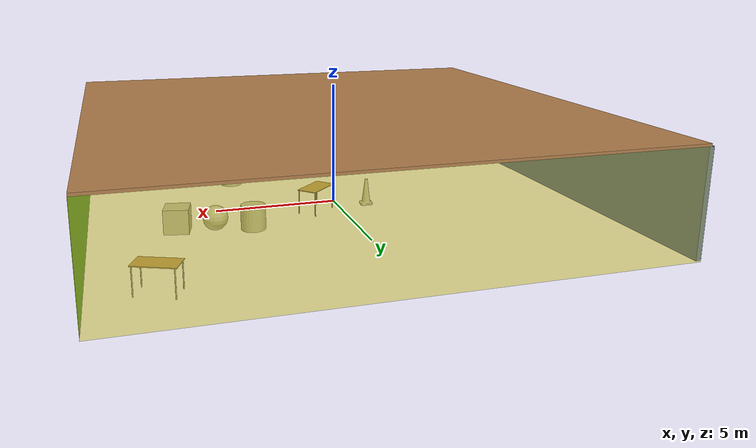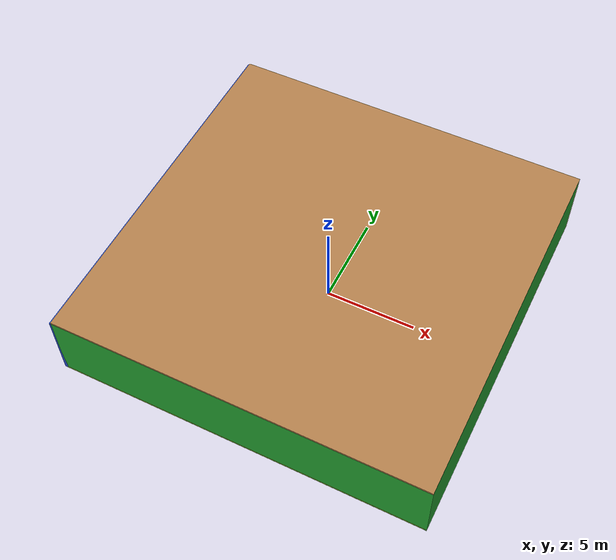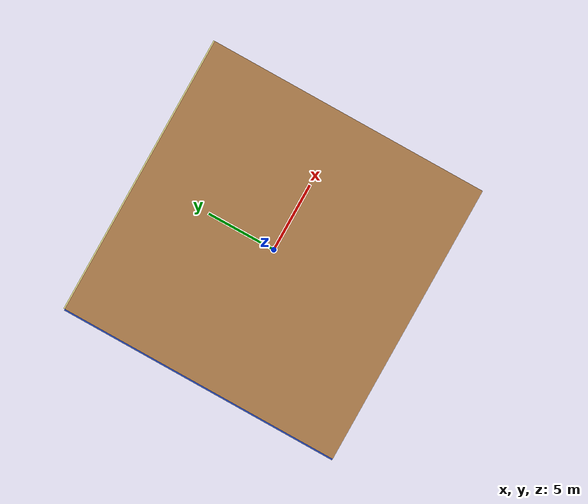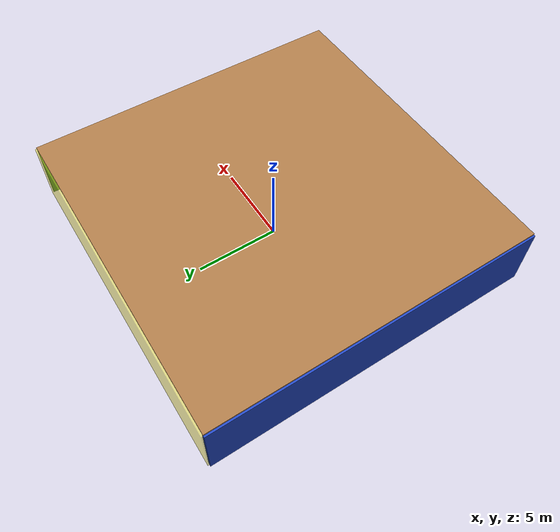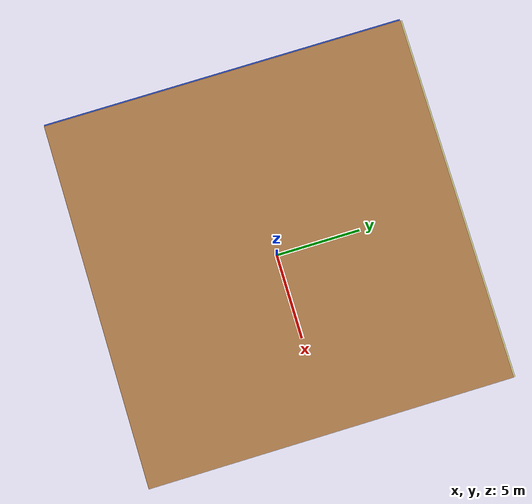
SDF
<sdf version="1.4">
 <world name="default">
  <physics type="ode">
   <max_step_size>0.001</max_step_size>
   <real_time_factor>1</real_time_factor>
   <real_time_update_rate>1000</real_time_update_rate>
   <gravity>0 0 -9.8</gravity>
  </physics>
  <scene><ambient>0.4 0.4 0.4 1</ambient><background>0.7 0.7 0.7 1</background><shadows>1</shadows></scene>
  <model name="Surrounding">
   <static>1</static>
   <link name="Ceiling">
    <collision name="Ceiling_Collision"><geometry><box><size>20 20 0.1</size></box></geometry></collision>
    <visual name="Ceiling_Visual">
     <geometry><box><size>20 20 0.1</size></box></geometry>
     <material>
      <script><uri>file://media/materials/scripts/gazebo.material</uri><name>Gazebo/Wood</name></script>
     </material>
    </visual>
    <pose>0 0 4.05 0 0 0</pose>
   </link>
   <link name="Wall_South">
    <collision name="Wall_South_Collision">
     <geometry><box><size>20 0 4</size></box></geometry>
     <pose>0 0 2 0 -0 0</pose>
    </collision>
    <visual name="Wall_South_Visual">
     <pose>0 0 2 0 -0 0</pose>
     <geometry><box><size>20 0 4</size></box></geometry>
     <material>
      <script><uri>file://media/materials/scripts/gazebo.material</uri><name>Gazebo/GreenGlow</name></script>
     </material>
    </visual>
    <velocity_decay><linear>0</linear><angular>0</angular></velocity_decay>
    <pose>0 -10 0 0 -0 0</pose>
   </link>
   <link name="Wall_East">
    <collision name="Wall_21_Collision">
     <geometry><box><size>20 0 4</size></box></geometry>
     <pose>0 0 2 0 -0 0</pose>
    </collision>
    <visual name="Wall_21_Visual">
     <pose>0 0 2 0 -0 0</pose>
     <geometry><box><size>20 0 4</size></box></geometry>
     <material>
      <script><uri>file://media/materials/scripts/gazebo.material</uri><name>Gazebo/GreenGlow</name></script>
     </material>
    </visual>
    <velocity_decay><linear>0</linear><angular>0</angular></velocity_decay>
    <pose>10 0 0 0 -0 1.5708</pose>
   </link>
   <link name="Wall_North">
    <collision name="Wall_22_Collision">
     <geometry><box><size>20 0.2 4</size></box></geometry>
     <pose>0 0 2 0 -0 0</pose>
    </collision>
    <visual name="Wall_22_Visual">
     <pose>0 0 2 0 -0 0</pose>
     <geometry><box><size>20 0.2 4</size></box></geometry>
     <material>
      <script>
       <uri>file://media/materials/scripts/gazebo.material</uri>
       <name>Gazebo/YellowTransparent</name>
      </script>
     </material>
    </visual>
    <velocity_decay><linear>0</linear><angular>0</angular></velocity_decay>
    <pose>0 10 0 0 -0 0</pose>
   </link>
   <link name="Wall_West">
    <collision name="Wall_23_Collision">
     <geometry><box><size>20 0.2 4</size></box></geometry>
     <pose>0 0 2 0 -0 0</pose>
    </collision>
    <visual name="Wall_23_Visual">
     <pose>0 0 2 0 -0 0</pose>
     <geometry><box><size>20 0.2 4</size></box></geometry>
     <material>
      <script><uri>file://media/materials/scripts/gazebo.material</uri><name>Gazebo/Blue</name></script>
     </material>
    </visual>
    <velocity_decay><linear>0</linear><angular>0</angular></velocity_decay>
    <pose>-10 0 0 0 0 -1.5708</pose>
   </link>
   <link name="Ground_link">
    <collision name="collision">
     <pose>0 0 .05 0 -0 0</pose>
     <geometry><box><size>20 20 0.1</size></box></geometry>
    </collision>
    <visual name="visual">
     <pose>0 0 .05 0 -0 0</pose>
     <geometry><box><size>20 20 0.1</size></box></geometry>
     <material>
      <script>
       <uri>file://media/materials/scripts/gazebo.material</uri>
       <name>Gazebo/YellowTransparent</name>
      </script>
     </material>
    </visual>
   </link>
   <static>1</static>
  </model>
  <spherical_coordinates>
   <surface_model>EARTH_WGS84</surface_model>
   <latitude_deg>0</latitude_deg>
   <longitude_deg>0</longitude_deg>
   <elevation>0</elevation>
   <heading_deg>0</heading_deg>
  </spherical_coordinates>
  <light name="lightball_0" type="diffuse">
   <diffuse>0.8 0.8 0.8 1</diffuse>
   <specular>0.2 0.2 0.2 1</specular>
   <attenuation>
    <range>100</range>
    <constant>0.7</constant>
    <linear>0.01</linear>
    <quadratic>0.001</quadratic>
   </attenuation>
   <direction>-0.5 0.1 -0.9</direction>
   <pose>-3.51385744483 -8.02759523366 0.78684640507 0 0 0</pose>
  </light>
  <light name="lightball_1" type="diffuse">
   <diffuse>0.8 0.8 0.8 1</diffuse>
   <specular>0.2 0.2 0.2 1</specular>
   <attenuation>
    <range>100</range>
    <constant>0.7</constant>
    <linear>0.01</linear>
    <quadratic>0.001</quadratic>
   </attenuation>
   <direction>-0.5 0.1 -0.9</direction>
   <pose>3.0688045368 -1.9658962648 0.805483301513 0 0 0</pose>
  </light>
  <light name="lightball_2" type="diffuse">
   <diffuse>0.8 0.8 0.8 1</diffuse>
   <specular>0.2 0.2 0.2 1</specular>
   <attenuation>
    <range>100</range>
    <constant>0.7</constant>
    <linear>0.01</linear>
    <quadratic>0.001</quadratic>
   </attenuation>
   <direction>-0.5 0.1 -0.9</direction>
   <pose>-5.3399920554 4.57975851625 3.6750626686 0 0 0</pose>
  </light>
  <light name="lightball_3" type="diffuse">
   <diffuse>0.8 0.8 0.8 1</diffuse>
   <specular>0.2 0.2 0.2 1</specular>
   <attenuation>
    <range>100</range>
    <constant>0.7</constant>
    <linear>0.01</linear>
    <quadratic>0.001</quadratic>
   </attenuation>
   <direction>-0.5 0.1 -0.9</direction>
   <pose>-4.84746293727 -7.66978485764 2.84239205397 0 0 0</pose>
  </light>
  <light name="lightball_4" type="diffuse">
   <diffuse>0.8 0.8 0.8 1</diffuse>
   <specular>0.2 0.2 0.2 1</specular>
   <attenuation>
    <range>100</range>
    <constant>0.7</constant>
    <linear>0.01</linear>
    <quadratic>0.001</quadratic>
   </attenuation>
   <direction>-0.5 0.1 -0.9</direction>
   <pose>6.0708306073 2.51231937479 3.21053712589 0 0 0</pose>
  </light>
  <include>
   <uri>model://construction_cone</uri>
   <pose>-1.20523585158 0.731639210175 0 0 0 2.98375957146</pose>
  </include>
  <include><uri>model://table</uri><pose>1.05657742382 1.0367153321 0 0 0 0.771107506084</pose></include>
  <include>
   <uri>model://textured_shapes</uri>
   <pose>4.46705893141 -6.78366843551 0 0 0 0.671936021862</pose>
  </include>
  <include>
   <uri>model://textured_shapes</uri>
   <pose>5.14051188515 0.813701102705 0 0 0 1.36973759442</pose>
  </include>
  <include><uri>model://table</uri><pose>7.77045580627 7.53631488285 0 0 0 2.74580182559</pose></include>
 </world>
</sdf>

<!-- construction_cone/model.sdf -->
<sdf version="1.5">
  <model name="Construction Cone">
    <link name="link">
      <collision name="collision">
        <geometry>
          <mesh>
            <scale>10 10 10</scale>
            <uri>file://isr-testbed/construction_cone/meshes/construction_cone.dae</uri>
          </mesh>
        </geometry>
      </collision>
      <visual name="visual">
        <geometry>
          <mesh>
            <scale>10 10 10</scale>
            <uri>file://isr-testbed/construction_cone/meshes/construction_cone.dae</uri>
          </mesh>
        </geometry>
      </visual>
    </link>
  </model>
</sdf>

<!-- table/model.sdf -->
<sdf version="1.5">
  <model name="table">
    <static>true</static>
    <link name="link">
      <collision name="surface">
        <pose>0 0 1.0 0 0 0</pose>
        <geometry>
          <box>
            <size>1.5 0.8 0.03</size>
          </box>
        </geometry>
        <surface>
          <friction>
            <ode>
              <mu>0.6</mu>
              <mu2>0.6</mu2>
            </ode>
          </friction>
        </surface>
      </collision>
      <visual name="visual1">
        <pose>0 0 1.0 0 0 0</pose>
        <geometry>
          <box>
            <size>1.5 0.8 0.03</size>
          </box>
        </geometry>
        <material>
          <script>
            <uri>model://media/materials/scripts/gazebo.material</uri>
            <name>Gazebo/Wood</name>
          </script>
        </material>
      </visual>
      <collision name="front_left_leg">
        <pose>0.68 0.38 0.5 0 0 0</pose>
        <geometry>
          <cylinder>
            <radius>0.02</radius>
            <length>1.0</length>
          </cylinder>
        </geometry>
      </collision>
      <visual name="front_left_leg">
        <pose>0.68 0.38 0.5 0 0 0</pose>
        <geometry>
          <cylinder>
            <radius>0.02</radius>
            <length>1.0</length>
          </cylinder>
        </geometry>
        <material>
          <script>
            <uri>model://media/materials/scripts/gazebo.material</uri>
            <name>Gazebo/Grey</name>
          </script>
        </material>
      </visual>
      <collision name="front_right_leg">
        <pose>0.68 -0.38 0.5 0 0 0</pose>
        <geometry>
          <cylinder>
            <radius>0.02</radius>
            <length>1.0</length>
          </cylinder>
        </geometry>
      </collision>
      <visual name="front_right_leg">
        <pose>0.68 -0.38 0.5 0 0 0</pose>
        <geometry>
          <cylinder>
            <radius>0.02</radius>
            <length>1.0</length>
          </cylinder>
        </geometry>
        <material>
          <script>
            <uri>model://media/materials/scripts/gazebo.material</uri>
            <name>Gazebo/Grey</name>
          </script>
        </material>
      </visual>
      <collision name="back_right_leg">
        <pose>-0.68 -0.38 0.5 0 0 0</pose>
        <geometry>
          <cylinder>
            <radius>0.02</radius>
            <length>1.0</length>
          </cylinder>
        </geometry>
      </collision>
      <visual name="back_right_leg">
        <pose>-0.68 -0.38 0.5 0 0 0</pose>
        <geometry>
          <cylinder>
            <radius>0.02</radius>
            <length>1.0</length>
          </cylinder>
        </geometry>
        <material>
          <script>
            <uri>model://media/materials/scripts/gazebo.material</uri>
            <name>Gazebo/Grey</name>
          </script>
        </material>
      </visual>
      <collision name="back_left_leg">
        <pose>-0.68 0.38 0.5 0 0 0</pose>
        <geometry>
          <cylinder>
            <radius>0.02</radius>
            <length>1.0</length>
          </cylinder>
        </geometry>
      </collision>
      <visual name="back_left_leg">
        <pose>-0.68 0.38 0.5 0 0 0</pose>
        <geometry>
          <cylinder>
            <radius>0.02</radius>
            <length>1.0</length>
          </cylinder>
        </geometry>
        <material>
          <script>
            <uri>model://media/materials/scripts/gazebo.material</uri>
            <name>Gazebo/Grey</name>
          </script>
        </material>
      </visual>
    </link>
  </model>
</sdf>

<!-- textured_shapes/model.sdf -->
<sdf version="1.6">
  <model name="textured_shapes">
    <pose>0 0 0.5 0 0 0</pose>
    <link name="box">
      <pose>0 -1.5 0 0 0 0</pose>
      <collision name="collision">
        <geometry>
          <box>
            <size>1 1 1</size>
          </box>
        </geometry>
      </collision>
      <visual name="visual">
        <geometry>
          <box>
            <size>1 1 1</size>
          </box>
        </geometry>
        <material>
          <script>
            <uri>model://../model_source/models/textured_shapes/materials/scripts</uri>
            <uri>model://../model_source/models/textured_shapes/materials/textures</uri>
            <name>TexturedShape/Squares</name>
          </script>
        </material>
      </visual>
    </link>
    <link name="sphere">
      <collision name="collision">
        <geometry>
          <sphere>
            <radius>0.5</radius>
          </sphere>
        </geometry>
      </collision>
      <visual name="visual">
        <geometry>
          <sphere>
            <radius>0.5</radius>
          </sphere>
        </geometry>
        <material>
          <script>
            <uri>model://../model_source/models/textured_shapes/materials/scripts</uri>
            <uri>model://../model_source/models/textured_shapes/materials/textures</uri>
            <name>TexturedShape/Squares</name>
          </script>
        </material>
      </visual>
    </link>
    <link name="cylinder">
      <pose>0 1.5 0 0 0 0</pose>
      <collision name="collision">
        <geometry>
          <cylinder>
            <radius>0.5</radius>
            <length>1</length>
          </cylinder>
        </geometry>
      </collision>
      <visual name="visual">
        <geometry>
          <cylinder>
            <radius>0.5</radius>
            <length>1</length>
          </cylinder>
        </geometry>
        <material>
          <script>
            <uri>model://../model_source/models/textured_shapes/materials/scripts</uri>
            <uri>model://../model_source/models/textured_shapes/materials/textures</uri>
            <name>TexturedShape/Squares</name>
          </script>
        </material>
      </visual>
    </link>
  </model>
</sdf>
